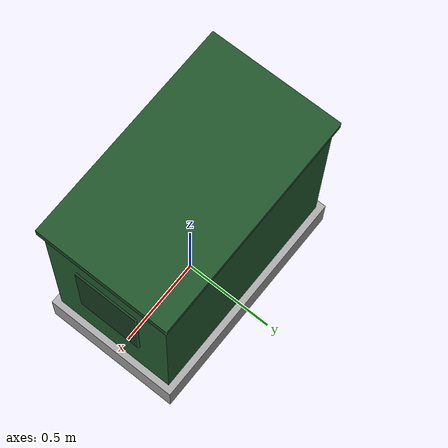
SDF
<?xml version="1.0" ?>
<sdf version="1.8">
  <model name="taipower_box">
    <static>true</static>
    <link name="box_link">
      <!-- 物理碰撞剛體 (簡化為單一 Box 幾何) -->
      <collision name="box_col">
        <pose>0 0 0.65 0 0 0</pose>
        <geometry>
          <box><size>1.2 0.7 1.3</size></box>
        </geometry>
        <surface>
          <friction><ode><mu>0.8</mu><mu2>0.8</mu2></ode></friction>
        </surface>
      </collision>

      <!-- 視覺呈現：混凝土基座 (Concrete Plinth) -->
      <visual name="plinth_vis">
        <pose>0 0 0.1 0 0 0</pose>
        <geometry>
          <box><size>1.25 0.75 0.2</size></box>
        </geometry>
        <material>
          <ambient>0.6 0.6 0.6 1</ambient>
          <diffuse>0.65 0.65 0.65 1</diffuse>
        </material>
      </visual>

      <!-- 視覺呈現：台電經典墨綠色雙門金屬箱體 (Taipower Green Cabinet) -->
      <visual name="cabinet_vis">
        <pose>0 0 0.7 0 0 0</pose>
        <geometry>
          <box><size>1.18 0.68 1.0</size></box>
        </geometry>
        <material>
          <ambient>0.12 0.32 0.16 1</ambient>
          <diffuse>0.15 0.38 0.20 1</diffuse>
        </material>
      </visual>

      <!-- 視覺呈現：箱頂斜頂遮雨蓋 (Top Cap) -->
      <visual name="top_cap_vis">
        <pose>0 0 1.22 0 0 0</pose>
        <geometry>
          <box><size>1.22 0.72 0.05</size></box>
        </geometry>
        <material>
          <ambient>0.10 0.28 0.14 1</ambient>
          <diffuse>0.12 0.32 0.16 1</diffuse>
        </material>
      </visual>

      <!-- 視覺呈現：雙開門接縫飾條 -->
      <visual name="door_seam_vis">
        <pose>0 -0.345 0.7 0 0 0</pose>
        <geometry>
          <box><size>0.02 0.01 0.9</size></box>
        </geometry>
        <material>
          <ambient>0.08 0.20 0.10 1</ambient>
          <diffuse>0.08 0.20 0.10 1</diffuse>
        </material>
      </visual>

      <!-- 視覺呈現：正面黃色高壓電警示標誌牌 (Taipower Warning Decal) -->
      <visual name="warning_sign_vis">
        <pose>0 -0.346 0.85 0 0 0</pose>
        <geometry>
          <box><size>0.24 0.005 0.24</size></box>
        </geometry>
        <material>
          <ambient>0.95 0.85 0.1 1</ambient>
          <diffuse>1.0 0.9 0.1 1</diffuse>
          <emissive>0.3 0.25 0.0 1</emissive>
        </material>
      </visual>

      <!-- 視覺呈現：側面百葉散熱孔 (Side Louver Panels) -->
      <visual name="louver_l">
        <pose>-0.595 0 0.75 0 0 0</pose>
        <geometry>
          <box><size>0.01 0.35 0.45</size></box>
        </geometry>
        <material>
          <ambient>0.08 0.22 0.12 1</ambient>
          <diffuse>0.1 0.25 0.14 1</diffuse>
        </material>
      </visual>
      <visual name="louver_r">
        <pose>0.595 0 0.75 0 0 0</pose>
        <geometry>
          <box><size>0.01 0.35 0.45</size></box>
        </geometry>
        <material>
          <ambient>0.08 0.22 0.12 1</ambient>
          <diffuse>0.1 0.25 0.14 1</diffuse>
        </material>
      </visual>
    </link>
  </model>
</sdf>
